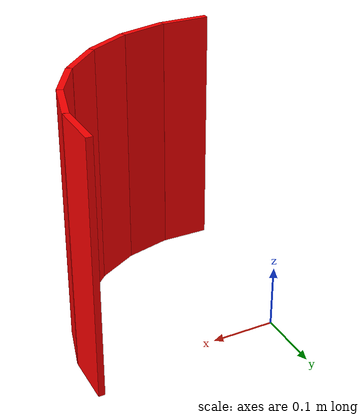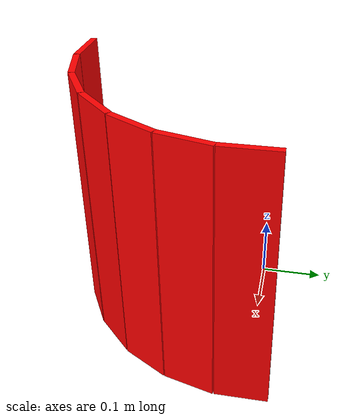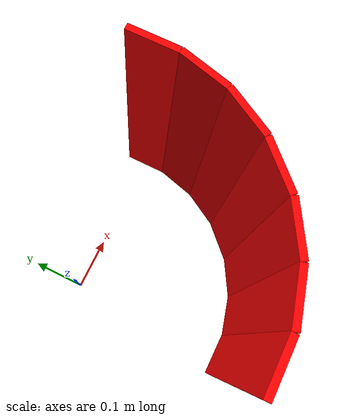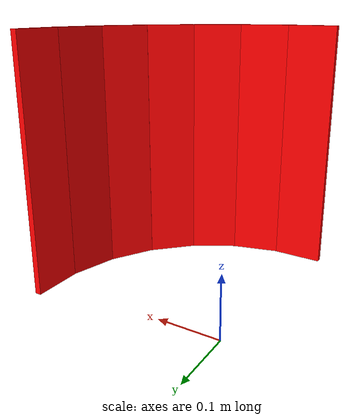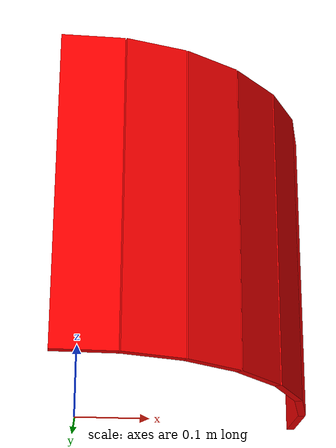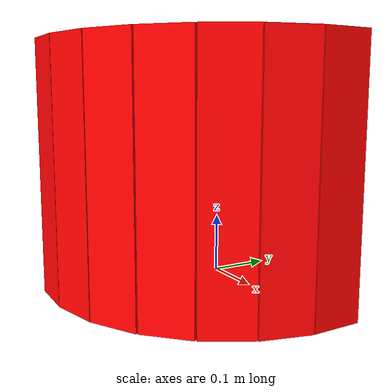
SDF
<sdf version="1.6">
  <model name="quarter_arc_wall">
    <static>true</static>

    🔽ここに貼る
    <link name="arc_link">

  <!-- 正確に接続する 1/4円弧 -->
  <!-- 7ピース、弧長 = 板長 -->
  <visual name="arc_piece_0">
    <pose>0.000000 -0.300000 0.2 0 0 0</pose>
    <geometry><box><size>0.0785 0.01 0.4</size></box></geometry>
    <material><ambient>1 0 0 1</ambient></material>
  </visual>
  <collision name="arc_piece_0">
    <pose>0.000000 -0.300000 0.2 0 0 0</pose>
    <geometry><box><size>0.0785 0.01 0.4</size></box></geometry>
  </collision>

  <visual name="arc_piece_1">
    <pose>0.077645 -0.290211 0.2 0 0 0.261799</pose>
    <geometry><box><size>0.0785 0.01 0.4</size></box></geometry>
    <material><ambient>1 0 0 1</ambient></material>
  </visual>
  <collision name="arc_piece_1">
    <pose>0.077645 -0.290211 0.2 0 0 0.261799</pose>
    <geometry><box><size>0.0785 0.01 0.4</size></box></geometry>
  </collision>

  <visual name="arc_piece_2">
    <pose>0.150000 -0.260422 0.2 0 0 0.523599</pose>
    <geometry><box><size>0.0785 0.01 0.4</size></box></geometry>
    <material><ambient>1 0 0 1</ambient></material>
  </visual>
  <collision name="arc_piece_2">
    <pose>0.150000 -0.260422 0.2 0 0 0.523599</pose>
    <geometry><box><size>0.0785 0.01 0.4</size></box></geometry>
  </collision>

  <visual name="arc_piece_3">
    <pose>0.212132 -0.212132 0.2 0 0 0.785398</pose>
    <geometry><box><size>0.0785 0.01 0.4</size></box></geometry>
    <material><ambient>1 0 0 1</ambient></material>
  </visual>
  <collision name="arc_piece_3">
    <pose>0.212132 -0.212132 0.2 0 0 0.785398</pose>
    <geometry><box><size>0.0785 0.01 0.4</size></box></geometry>
  </collision>

  <visual name="arc_piece_4">
    <pose>0.260422 -0.150000 0.2 0 0 1.047198</pose>
    <geometry><box><size>0.0785 0.01 0.4</size></box></geometry>
    <material><ambient>1 0 0 1</ambient></material>
  </visual>
  <collision name="arc_piece_4">
    <pose>0.260422 -0.150000 0.2 0 0 1.047198</pose>
    <geometry><box><size>0.0785 0.01 0.4</size></box></geometry>
  </collision>

  <visual name="arc_piece_5">
    <pose>0.290211 -0.077645 0.2 0 0 1.308997</pose>
    <geometry><box><size>0.0785 0.01 0.4</size></box></geometry>
    <material><ambient>1 0 0 1</ambient></material>
  </visual>
  <collision name="arc_piece_5">
    <pose>0.290211 -0.077645 0.2 0 0 1.308997</pose>
    <geometry><box><size>0.0785 0.01 0.4</size></box></geometry>
  </collision>

  <visual name="arc_piece_6">
    <pose>0.300000 0.000000 0.2 0 0 1.570796</pose>
    <geometry><box><size>0.0785 0.01 0.4</size></box></geometry>
    <material><ambient>1 0 0 1</ambient></material>
  </visual>
  <collision name="arc_piece_6">
    <pose>0.300000 0.000000 0.2 0 0 1.570796</pose>
    <geometry><box><size>0.0785 0.01 0.4</size></box></geometry>
  </collision>
</link>

</model>
</sdf>
